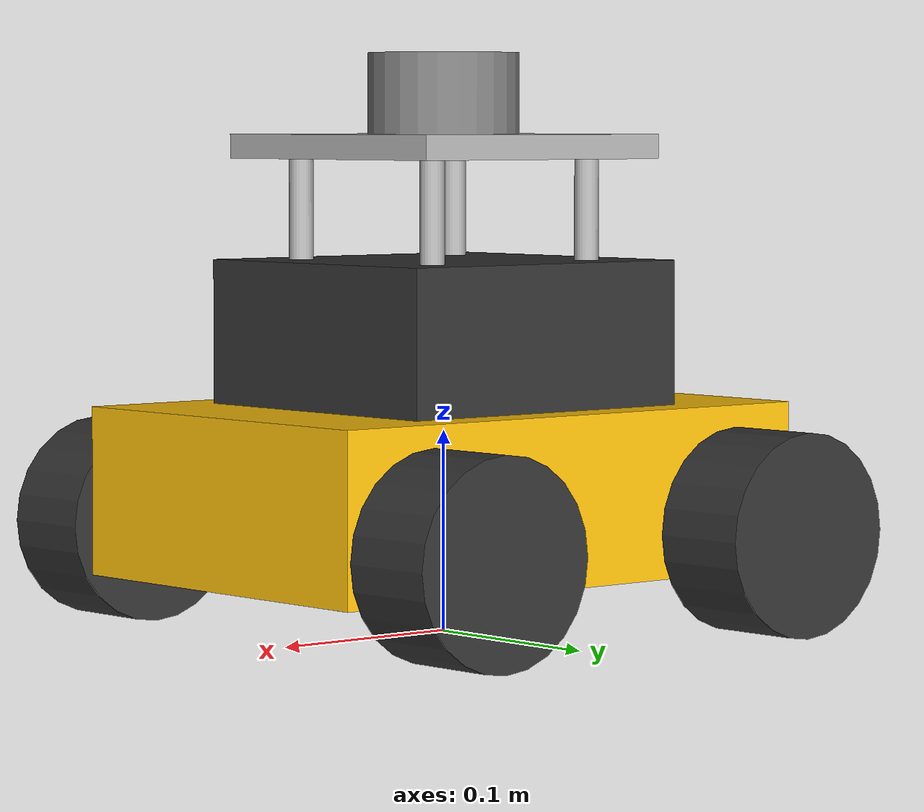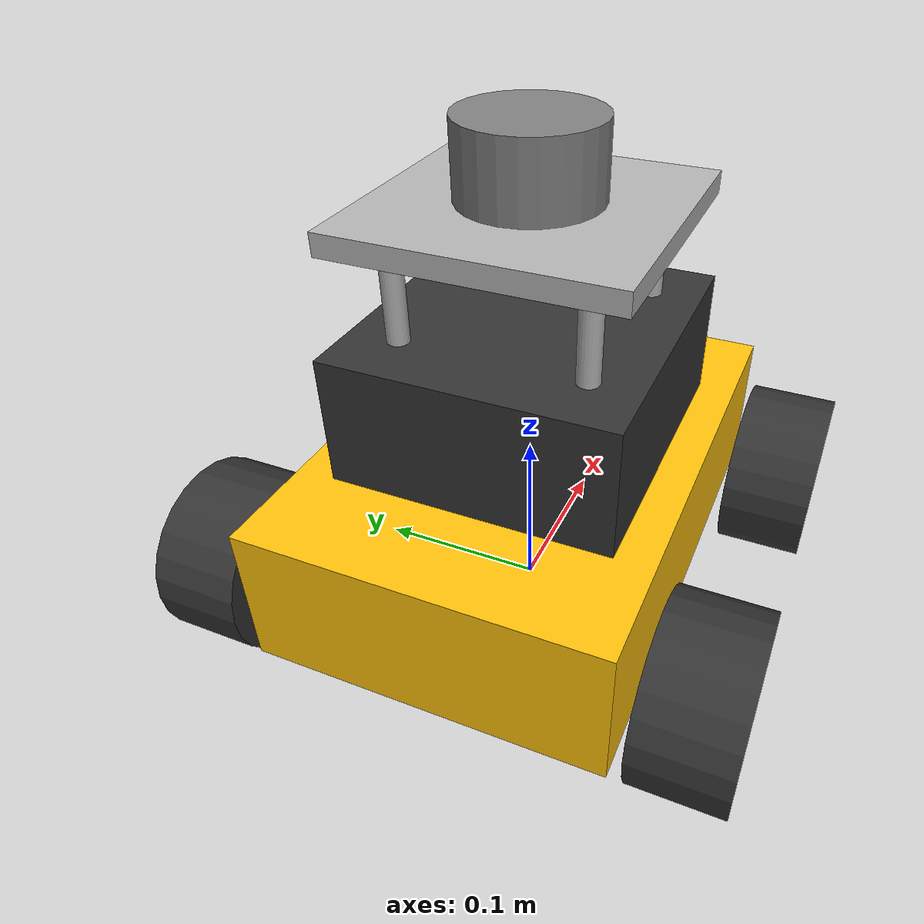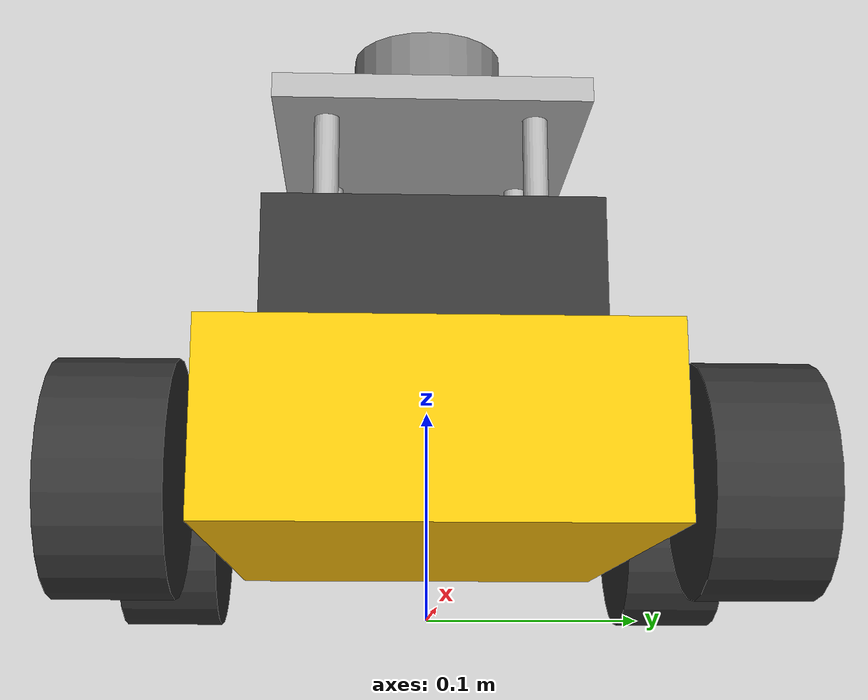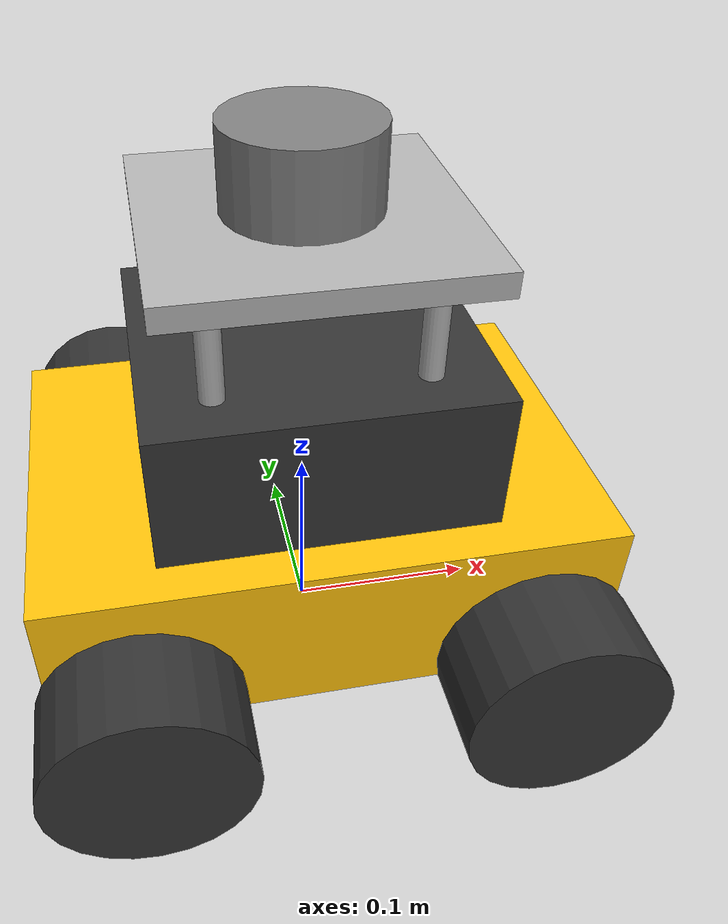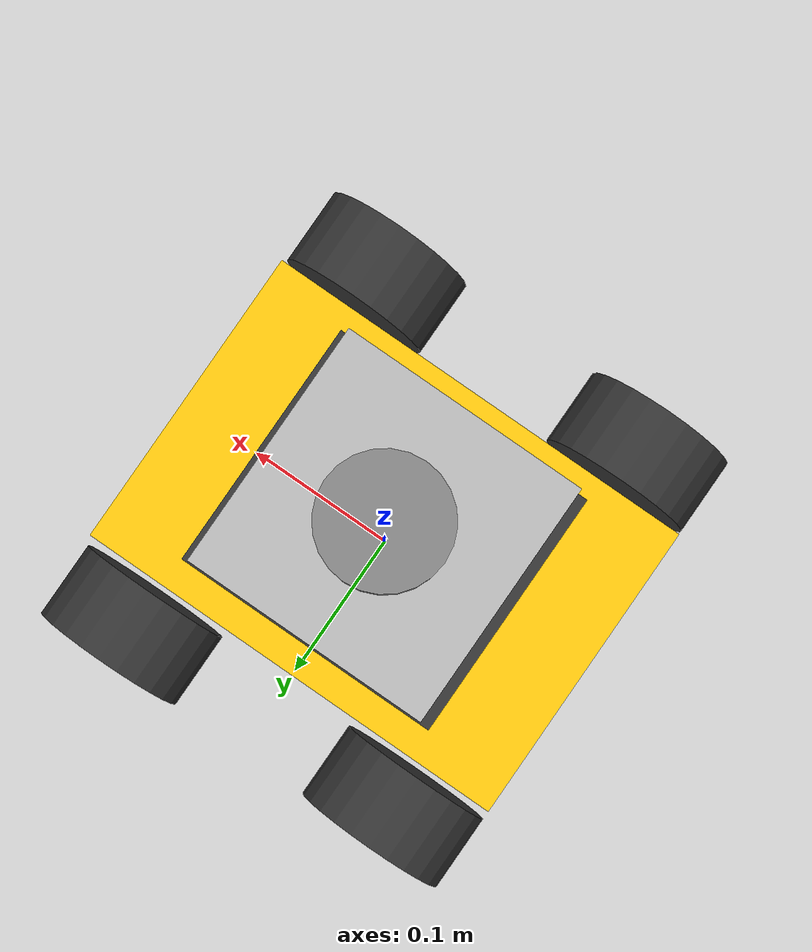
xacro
<?xml version="1.0"?>
<robot xmlns:xacro="http://www.ros.org/wiki/xacro" name="mobi">

  <!-- Hier werden die Dateien importiert. -->
  <xacro:include filename="$(find mobi_sim)/urdf/common_properties.xacro" />
  <xacro:include filename="$(find mobi_sim)/urdf/mobi.gazebo.xacro" />

  <!-- Farben vom Roboter für RVIZ-->
  <xacro:materials_rviz />

  <!-- Base Koordinatensystem als Referenz -->
  <link name="base_link"/>

  <joint name="base_footprint_joint" type="fixed">
    <parent link="base_link"/>
    <child link="base_footprint" />
    <origin xyz="0 0 0" rpy="0 0 0"/>
  </joint>

  <link name="base_footprint"/>

  <!-- Mobi Plattform  -->

  <joint name="chassis_joint" type="fixed">
    <parent link="base_link"/>
    <child link="chassis_link" />
    <origin xyz="0 0 0.03" rpy="0 0 0"/>
  </joint>

  <link name="chassis_link">
      <visual>
	    <origin rpy="0 0 0" xyz="0 0 0.0415" />
      <geometry>
        <box size="0.285 0.198 0.083"/>
      </geometry>
	    <material name="yellow"/>
    </visual>

    <collision>
      <origin rpy="0 0 0" xyz="0 0 0.0415" />
      <geometry>
        <box size="0.285 0.198 0.083"/>
      </geometry>
    </collision>

    <inertial>
      <mass value="10"/>
      <origin rpy="0 0 0" xyz="0 0 0.0415"/>
       <inertia ixx="0.03267" ixy="0" ixz="0" iyy="0.067688" iyz="0" izz="0.100358"/>
    </inertial>
  </link>

  <!-- 4 Räder werden hier hinzugefügt
  Links vorne
  Links hinten
  Rechts vorne
  Rechts hinten
  -->
  <joint name="front_left_wheel_joint" type="continuous">
        <origin xyz="0.0975 0.107 0.023" rpy="1.5708 0 3.1415"/>
        <parent link="chassis_link"/>
        <child link="front_left_wheel_link"/>
        <axis xyz="0 0 -1"/>
  </joint>

  <link name="front_left_wheel_link">
    <visual>
	    <origin rpy="0 0 0" xyz="0 0 0.025" />
      <geometry>
        <cylinder radius="0.05" length="0.05"/>
      </geometry>
	    <material name="dark_gray"/>
    </visual>

    <collision>
      <origin rpy="0 0 0" xyz="0 0 0.025" />
      <geometry>
        <cylinder radius="0.05" length="0.05"/>
      </geometry>
    </collision>

    <inertial>
      <mass value="0.2"/>
      <origin rpy="0 0 0" xyz="0 0 0.025"/>
      <inertia ixx="0.000167" ixy="0" ixz="0" iyy="0.000167" iyz="0" izz="0.00025"/>
    </inertial>
  </link>

  <joint name="rear_left_wheel_joint" type="continuous">
        <origin xyz="-0.0975 0.107 0.023" rpy="1.5708 0 3.1415"/>
        <parent link="chassis_link"/>
        <child link="rear_left_wheel_link"/>
        <axis xyz="0 0 -1"/>
  </joint>

  <link name="rear_left_wheel_link">
    <visual>
	    <origin rpy="0 0 0" xyz="0 0 0.025" />
      <geometry>
        <cylinder radius="0.05" length="0.05"/>
      </geometry>
	    <material name="dark_gray"/>
    </visual>

    <collision>
      <origin rpy="0 0 0" xyz="0 0 0.025" />
      <geometry>
        <cylinder radius="0.05" length="0.05"/>
      </geometry>
    </collision>

    <inertial>
      <mass value="0.2"/>
      <origin rpy="0 0 0" xyz="0 0 0.025"/>
      <inertia ixx="0.000167" ixy="0" ixz="0" iyy="0.000167" iyz="0" izz="0.00025"/>
    </inertial>
  </link>

  <joint name="front_right_wheel_joint" type="continuous">
        <origin xyz="0.0975 -0.107 0.023" rpy="1.5708 0 0"/>
        <parent link="chassis_link"/>
        <child link="front_right_wheel_link"/>
        <axis xyz="0 0 1"/>
  </joint>

  <link name="front_right_wheel_link">
    <visual>
	    <origin rpy="0 0 0" xyz="0 0 0.025" />
      <geometry>
        <cylinder radius="0.05" length="0.05"/>
      </geometry>
	    <material name="dark_gray"/>
    </visual>

    <collision>
      <origin rpy="0 0 0" xyz="0 0 0.025" />
      <geometry>
        <cylinder radius="0.05" length="0.05"/>
      </geometry>
    </collision>

    <inertial>
      <mass value="0.2"/>
      <origin rpy="0 0 0" xyz="0 0 0.025"/>
      <inertia ixx="0.000167" ixy="0" ixz="0" iyy="0.000167" iyz="0" izz="0.00025"/>
    </inertial>
  </link>

  <joint name="rear_right_wheel_joint" type="continuous">
        <origin xyz="-0.0975 -0.107 0.023" rpy="1.5708 0 0"/>
        <parent link="chassis_link"/>
        <child link="rear_right_wheel_link"/>
        <axis xyz="0 0 1"/>
  </joint>

  <link name="rear_right_wheel_link">
    <visual>
	    <origin rpy="0 0 0" xyz="0 0 0.025" />
      <geometry>
        <cylinder radius="0.05" length="0.05"/>
      </geometry>
	    <material name="dark_gray"/>
    </visual>

    <collision>
      <origin rpy="0 0 0" xyz="0 0 0.025" />
      <geometry>
        <cylinder radius="0.05" length="0.05"/>
      </geometry>
    </collision>

    <inertial>
      <mass value="0.2"/>
      <origin rpy="0 0 0" xyz="0 0 0.025"/>
      <inertia ixx="0.000167" ixy="0" ixz="0" iyy="0.000167" iyz="0" izz="0.00025"/>
    </inertial>
  </link>

  <!-- Obere Abschnitt von Mobi  -->

  <joint name="housing_joint" type="fixed">
        <origin xyz="0 0 0.083" rpy="0 0 0"/>
        <parent link="chassis_link"/>
        <child link="housing_link"/>
  </joint>

  <link name="housing_link">
    <visual>
	    <origin xyz="0 0 0.03575" rpy="0 0 0" />
      <geometry>
        <box size="0.167 0.1556 0.0715"/>
      </geometry>
	    <material name="dark_gray"/>
    </visual>
  </link>

  <joint name="cylinder_1_joint" type="fixed">
        <origin xyz="0.05 0.05 0.0715" rpy="0 0 0"/>
        <parent link="housing_link"/>
        <child link="cylinder_1_link"/>
  </joint>

  <link name="cylinder_1_link">
    <visual>
	    <origin xyz="0 0 0.025" rpy="0 0 0" />
      <geometry>
        <cylinder radius="0.006" length="0.05"/>
      </geometry>
	    <material name="light_gray"/>
    </visual>
  </link>

  <joint name="cylinder_2_joint" type="fixed">
        <origin xyz="-0.05 0.05 0.0715" rpy="0 0 0"/>
        <parent link="housing_link"/>
        <child link="cylinder_2_link"/>
  </joint>

  <link name="cylinder_2_link">
    <visual>
	    <origin xyz="0 0 0.025" rpy="0 0 0" />
      <geometry>
        <cylinder radius="0.006" length="0.05"/>
      </geometry>
	    <material name="light_gray"/>
    </visual>
  </link>

  <joint name="cylinder_3_joint" type="fixed">
        <origin xyz="0.05 -0.05 0.0715" rpy="0 0 0"/>
        <parent link="housing_link"/>
        <child link="cylinder_3_link"/>
  </joint>

  <link name="cylinder_3_link">
    <visual>
	    <origin xyz="0 0 0.025" rpy="0 0 0" />
      <geometry>
        <cylinder radius="0.006" length="0.05"/>
      </geometry>
	    <material name="light_gray"/>
    </visual>
  </link>

  <joint name="cylinder_4_joint" type="fixed">
        <origin xyz="-0.05 -0.05 0.0715" rpy="0 0 0"/>
        <parent link="housing_link"/>
        <child link="cylinder_4_link"/>
  </joint>

  <link name="cylinder_4_link">
    <visual>
	    <origin xyz="0 0 0.025" rpy="0 0 0" />
      <geometry>
        <cylinder radius="0.006" length="0.05"/>
      </geometry>
	    <material name="light_gray"/>
    </visual>
  </link>

  <joint name="plate_joint" type="fixed">
        <origin xyz="0 0 0.1215" rpy="0 0 0"/>
        <parent link="housing_link"/>
        <child link="plate_link"/>
  </joint>

  <link name="plate_link">
    <visual>
	    <origin xyz="0 0 0.006" rpy="0 0 0" />
      <geometry>
        <box size="0.150 0.150 0.012"/>
      </geometry>
	    <material name="light_gray"/>
    </visual>
  </link>

  <joint name="lidar_joint" type="fixed">
        <origin xyz="0 0 0.012" rpy="0 0 0"/>
        <parent link="plate_link"/>
        <child link="lidar_link"/>
  </joint>

  <link name="lidar_link">
    <visual>
	    <origin xyz="0 0 0.02" rpy="0 0 0" />
      <geometry>
        <cylinder radius="0.0375" length="0.04"/>
      </geometry>
	    <material name="gray"/>
    </visual>
  </link>

  <!-- Hier werden Links für die Sensoren definiert. -->
  <joint name="imu_joint" type="fixed">
    <origin xyz="0 0 0" rpy="0 0 0"/>
    <parent link="housing_link"/>
    <child link="imu_link"/>
  </joint>

  <link name="imu_link"/>

  <joint name="scan_joint" type="fixed">
    <origin xyz="0 0 0.03" rpy="0 0 0"/>
    <parent link="lidar_link"/>
    <child link="laser_frame"/>
  </joint>

  <link name="laser_frame"/>

</robot>

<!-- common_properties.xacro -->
<robot xmlns:xacro="http://www.ros.org/wiki/xacro">

	<!-- Hier können weitere Farben für RVIZ hinzugefügt werden -->
	<xacro:macro name="materials_rviz">

		<material name="light_gray">
			<color rgba="0.7 0.7 0.7 1"/>
		</material>

		<material name="dark_gray">
			<color rgba="0.2 0.2 0.2 1"/>
		</material>

		<material name="yellow">
			<color rgba="1.0 0.76 0.04 1"/>
		</material>

		<material name="gray">
			<color rgba="0.5 0.5 0.5 1"/>
		</material>

	</xacro:macro>

</robot>
